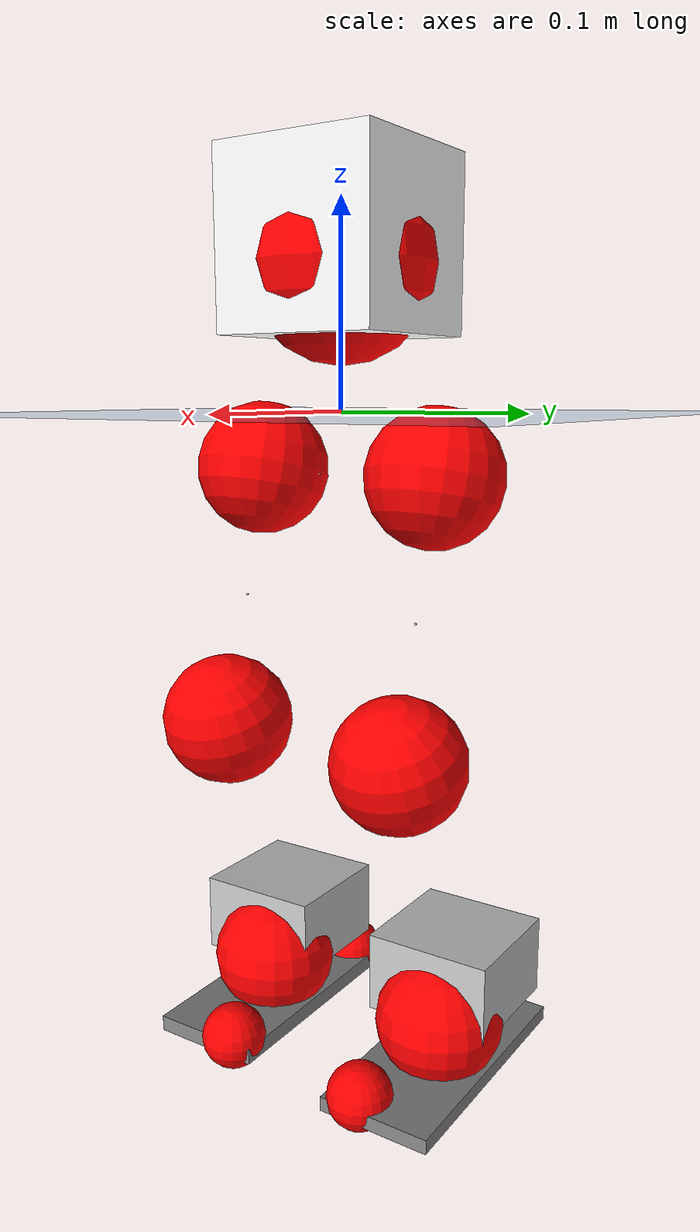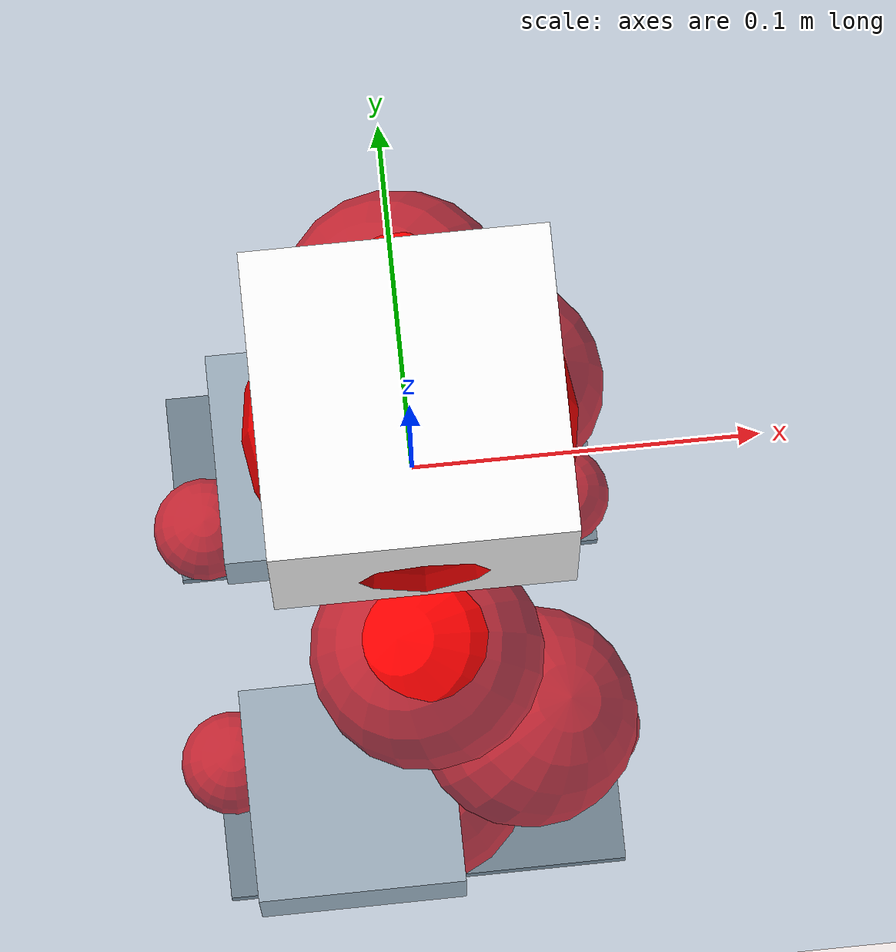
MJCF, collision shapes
<mujoco model="pi_12dof_release_v1">
  <compiler angle="radian" assetdir="assets" balanceinertia="true" inertiafromgeom="false"/>

  <option timestep="0.005" density="1.2" viscosity="2e-05"/>

  <size nkey="1"/>

  <visual>
    <quality shadowsize="8192"/>
    <map shadowclip="0.5"/>
  </visual>

  <default>
    <default class="/">
      <joint armature="0.01" damping="0.01" frictionloss="0.01"/>
      <geom contype="0" conaffinity="0" group="1" solref="-1000 -80"/>
      <site size="0.01 0.005 0.005" group="5"/>
      <general forcelimited="true" biastype="affine" gainprm="20" biasprm="0 -20 -0.5"/>
      <default class="foot">
        <geom size="0.0845 0.036 0.005" type="box" condim="6" group="4" priority="1" friction="0.9 0.2 0.2" solimp="0.015 1 0.005"/>
      </default>
      <default class="reward_collision_sphere">
        <geom group="5" rgba="1 0 0 1"/>
      </default>
    </default>
  </default>

  <asset>
    <texture type="skybox" colorspace="auto" name="//unnamed_texture_0" builtin="gradient" rgb1="0.95 0.95 0.95" rgb2="0.95 0.95 0.95" width="100" height="600"/>
    <texture type="2d" colorspace="auto" name="texplane" builtin="checker" rgb1="0.345 0.575 0.748" rgb2="0.345 0.575 0.748" markrgb="1 1 1" width="512" height="512"/>
    <material name="MatPlane" class="/" texture="texplane" texuniform="true" texrepeat="2 2" specular="0.9"/>
    <mesh name="baselink_1" class="/" file="baselink_1.STL"/>
    <mesh name="r_hip_pitch_link" class="/" file="r_hip_pitch_link.STL"/>
    <mesh name="r_hip_roll_link" class="/" file="r_hip_roll_link.STL"/>
    <mesh name="r_thigh_link" class="/" file="r_thigh_link.STL"/>
    <mesh name="r_calf_link" class="/" file="r_calf_link.STL"/>
    <mesh name="r_ankle_pitch_link" class="/" file="r_ankle_pitch_link.STL"/>
    <mesh name="r_ankle_roll_link" class="/" file="r_ankle_roll_link.STL"/>
    <mesh name="l_hip_pitch_link" class="/" file="l_hip_pitch_link.STL"/>
    <mesh name="l_hip_roll_link" class="/" file="l_hip_roll_link.STL"/>
    <mesh name="l_thigh_link" class="/" file="l_thigh_link.STL"/>
    <mesh name="l_calf_link" class="/" file="l_calf_link.STL"/>
    <mesh name="l_ankle_pitch_link" class="/" file="l_ankle_pitch_link.STL"/>
    <mesh name="l_ankle_roll_link" class="/" file="l_ankle_roll_link.STL"/>
  </asset>

  <worldbody>
    <geom name="floor" class="/" size="100 100 0.125" type="plane" group="0" material="MatPlane"/>
    <light name="toplight_shadow" class="/" pos="0 0 5" dir="0.0990148 0.0990148 -0.990148" type="directional" ambient="0.04 0.04 0.04" diffuse="0.55 0.55 0.55" specular="0.12 0.12 0.12"/>
    <light name="toplight_fill" class="/" pos="0 0 5" dir="0.0990148 0.0990148 -0.990148" type="directional" castshadow="false" ambient="0.04 0.04 0.04" diffuse="0.3 0.3 0.3" specular="0.08 0.08 0.08"/>
    <body name="trunk" pos="-0.000123249 0.0001905 3.90438e-05" quat="1 0.00029038 9.58334e-05 -9.72632e-05">
      <inertial pos="0.00238567 0.00103713 0.0385369" quat="0.695082 0.00784851 0.0134235 0.718762" mass="1.29564" diaginertia="0.00473149 0.00166038 0.00366841"/>
      <joint name="//unnamed_joint_0" type="free"/>
      <geom name="//unnamed_geom_1" class="/" type="mesh" density="0" rgba="1 1 1 1" mesh="baselink_1"/>
      <geom name="//unnamed_geom_2" class="/" size="0.042665 0.042665 0.042665" pos="0 0 0.0783091" type="box" rgba="1 1 1 1"/>
      <geom name="//unnamed_geom_3" class="reward_collision_sphere" size="0.0469314" pos="0 0 0.0685205"/>
      <site name="imu" class="/" pos="0.0042348 0.0137759 -0.00990514" size="0.00853299"/>
      <camera name="track" class="/" pos="0 -1.43142 0" quat="0.707107 0.707107 0 0" mode="trackcom"/>
      <camera name="ego_camera" class="/" pos="0.0648993 0 0.176195" quat="-0.5 -0.5 0.5 0.5"/>
      <body name="r_hip_pitch_link" pos="0.000185619 -0.0131724 -0.0310113" quat="0.992197 8.43155e-06 -0.124683 1.6925e-05">
        <inertial pos="-0.000237634 -0.0389861 -0.000374679" quat="-0.0189419 0.706099 -0.0290025 0.707266" mass="0.221778" diaginertia="5.22581e-05 1.73454e-05 7.21378e-05"/>
        <joint name="r_hip_pitch_joint" class="/" pos="0 0 0" axis="0.00563828 -0.999983 0.00117569" range="-1.72227 1.21333" armature="0.00858304" damping="0.00310841" frictionloss="0.00871753"/>
        <geom name="//unnamed_geom_4" class="/" type="mesh" density="0" rgba="0.75294 0.75294 0.75294 1" mesh="r_hip_pitch_link"/>
        <geom name="//unnamed_geom_5" class="/" size="0.00042665 0.00042665 0.00042665" type="box" rgba="0.75294 0.75294 0.75294 1"/>
        <body name="r_hip_roll_link" pos="-0.000282202 -0.0364533 0.0019511" quat="1 0.000221096 0.000147546 0.000538716">
          <inertial pos="-0.00308135 -0.000240016 -0.0619412" quat="0.702517 -0.0863811 -0.076037 0.702301" mass="0.241463" diaginertia="0.000161542 5.13444e-05 0.000110976"/>
          <joint name="r_hip_roll_joint" class="/" pos="0 0 0" axis="-0.999934 0.00539141 0.0101172" range="-0.108965 0.489119" armature="0.00865973" damping="0.00395657" frictionloss="0.00969008"/>
          <geom name="//unnamed_geom_6" class="/" type="mesh" density="0" rgba="0.75294 0.75294 0.75294 1" mesh="r_hip_roll_link"/>
          <geom name="//unnamed_geom_7" class="/" size="0.00042665 0.00042665 0.00042665" type="box" rgba="0.75294 0.75294 0.75294 1"/>
          <geom name="//unnamed_geom_8" class="reward_collision_sphere" size="0.034132"/>
          <body name="r_thigh_link" pos="-0.00109319 -8.3511e-05 -0.0665306" quat="1 -0.000212143 -0.0006288 -8.6834e-05">
            <inertial pos="0.00120848 0.00042897 -0.0453014" quat="0.737255 0.675595 0.00110814 0.00492151" mass="0.0707724" diaginertia="6.07542e-05 1.78739e-05 5.26163e-05"/>
            <joint name="r_thigh_joint" class="/" pos="0 0 0" axis="-0.00051022 -0.00110301 -0.999999" stiffness="0.00875678" range="-0.35896 0.621997" armature="0.00869179" damping="0.0160381" frictionloss="0.00830648"/>
            <geom name="//unnamed_geom_9" class="/" type="mesh" density="0" rgba="0.75294 0.75294 0.75294 1" mesh="r_thigh_link"/>
            <geom name="//unnamed_geom_10" class="/" size="0.00042665 0.00042665 0.00042665" type="box" rgba="0.75294 0.75294 0.75294 1"/>
            <body name="r_calf_link" pos="-0.00215309 -0.00352986 -0.0662843" quat="0.947662 -0.000158945 0.319274 3.89814e-06">
              <inertial pos="-0.00338638 -0.000664463 -0.0677348" quat="0.999986 -0.00344262 0.00074531 0.00405135" mass="0.490989" diaginertia="0.00167653 0.000645888 0.00015289"/>
              <joint name="r_calf_joint" class="/" pos="0 0 0" axis="-0.00973179 -0.999932 0.00639517" range="-1.65112 0.703793" armature="0.00853158" damping="0.00156765" frictionloss="0.00824607"/>
              <geom name="//unnamed_geom_11" class="/" type="mesh" density="0" rgba="0.75294 0.75294 0.75294 1" mesh="r_calf_link"/>
              <geom name="//unnamed_geom_12" class="/" size="0.00042665 0.00042665 0.00042665" type="box" rgba="0.75294 0.75294 0.75294 1"/>
              <geom name="//unnamed_geom_13" class="reward_collision_sphere" size="0.034132"/>
              <body name="r_ankle_pitch_link" pos="-0.000515745 -0.00169104 -0.141664" quat="0.979938 -0.00010852 -0.199296 0.00127525">
                <inertial pos="0.00127252 0.00274274 -0.00272474" quat="0.00155464 0.711992 -0.00848649 0.702134" mass="0.111891" diaginertia="0.000147114 4.06394e-05 0.000111124"/>
                <joint name="r_ankle_pitch_joint" class="/" pos="0 0 0" axis="0.0104571 -0.999921 -0.00701521" range="-1.35465 0.505153" armature="0.00745191" damping="0.00403364" frictionloss="0.00868882"/>
                <geom name="//unnamed_geom_14" class="/" type="mesh" density="0" rgba="0.75294 0.75294 0.75294 1" mesh="r_ankle_pitch_link"/>
                <geom name="//unnamed_geom_15" class="/" size="0.0332787 0.034132 0.0213325" type="box" rgba="0.75294 0.75294 0.75294 1"/>
                <body name="r_ankle_roll_link" pos="0.0658478 0.00501489 0.0007691" quat="1 4.59225e-05 0.00031197 0.000458675">
                  <inertial pos="-0.0231807 -0.000726064 -0.0125042" quat="0.560718 0.430629 0.431773 0.560113" mass="0.317582" diaginertia="0.000550112 0.000194759 0.000243766"/>
                  <joint name="r_ankle_roll_joint" class="/" pos="0 0 0" axis="-0.999985 0.00419184 -0.0034908" stiffness="0.00865986" range="-0.137231 0.207083" armature="0.00798064" damping="0" frictionloss="0.0082926"/>
                  <geom name="//unnamed_geom_16" class="/" type="mesh" density="0" rgba="0.75294 0.75294 0.75294 1" mesh="r_ankle_roll_link"/>
                  <geom name="//unnamed_geom_17" class="/" type="mesh" rgba="0.75294 0.75294 0.75294 1" mesh="r_ankle_roll_link"/>
                  <geom name="right_foot" class="foot" size="0.0647062 0.0299461 0.00421576" pos="-0.0441315 0 -0.04307"/>
                  <geom name="//unnamed_geom_19" class="reward_collision_sphere" size="0.034132" pos="-0.0432662 0 -0.0195773"/>
                  <geom name="//unnamed_geom_20" class="reward_collision_sphere" size="0.017066" pos="0.0129799 0.0143142 -0.0391546"/>
                  <geom name="//unnamed_geom_21" class="reward_collision_sphere" size="0.017066" pos="-0.103839 0.0143142 -0.0391546"/>
                  <site name="right_foot" class="foot" pos="-0.0441315 0 -0.04307" size="0.00853299"/>
                </body>
              </body>
            </body>
          </body>
        </body>
      </body>
      <body name="l_hip_pitch_link" pos="-0.000956676 0.0142812 -0.0307395" quat="0.992198 0.000860492 -0.124669 -0.000377291">
        <inertial pos="-0.00207525 0.037764 0.000271077" quat="-0.0259139 0.707632 0.0286561 0.705524" mass="0.234886" diaginertia="5.80103e-05 1.96807e-05 8.51524e-05"/>
        <joint name="l_hip_pitch_joint" class="/" pos="0 0 0" axis="-0.00563429 0.999971 0.00514137" range="-1.24812 1.69693" armature="0.00859595" damping="0" frictionloss="0.00973392"/>
        <geom name="//unnamed_geom_22" class="/" type="mesh" density="0" rgba="0.75294 0.75294 0.75294 1" mesh="l_hip_pitch_link"/>
        <geom name="//unnamed_geom_23" class="/" size="0.00042665 0.00042665 0.00042665" type="box" rgba="0.75294 0.75294 0.75294 1"/>
        <body name="l_hip_roll_link" pos="0.00142971 0.0387598 -0.000277105" quat="0.999999 -0.000673186 0.000686798 0.000388819">
          <inertial pos="-0.00201853 -0.00224529 -0.0592307" quat="0.699545 -0.074931 -0.0777193 0.706386" mass="0.241555" diaginertia="0.000161004 5.16174e-05 0.000117636"/>
          <joint name="l_hip_roll_joint" class="/" pos="0 0 0" axis="-0.999993 -0.00181961 -0.00324867" range="-0.499299 0.0580832" armature="0.00766043" damping="0.017024" frictionloss="0.00858737"/>
          <geom name="//unnamed_geom_24" class="/" type="mesh" density="0" rgba="0.75294 0.75294 0.75294 1" mesh="l_hip_roll_link"/>
          <geom name="//unnamed_geom_25" class="/" size="0.00042665 0.00042665 0.00042665" type="box" rgba="0.75294 0.75294 0.75294 1"/>
          <geom name="//unnamed_geom_26" class="reward_collision_sphere" size="0.034132"/>
          <body name="l_thigh_link" pos="-0.00285173 -0.00145227 -0.069044" quat="1 0.000413397 0.000824062 -0.000251053">
            <inertial pos="0.00020987 0.00111064 -0.0464353" quat="0.678398 0.734691 -0.00134257 0.00172579" mass="0.0671177" diaginertia="5.91519e-05 1.66477e-05 5.22295e-05"/>
            <joint name="l_thigh_joint" class="/" pos="0 0 0" axis="-0.00267688 0.000649511 -0.999996" range="-0.578802 0.293633" armature="0.00787826" damping="0" frictionloss="0.00839781"/>
            <geom name="//unnamed_geom_27" class="/" type="mesh" density="0" rgba="0.75294 0.75294 0.75294 1" mesh="l_thigh_link"/>
            <geom name="//unnamed_geom_28" class="/" size="0.00042665 0.00042665 0.00042665" type="box" rgba="0.75294 0.75294 0.75294 1"/>
            <body name="l_calf_link" pos="-0.00196962 0.000264933 -0.0682894" quat="0.947677 -5.44632e-06 0.319232 2.00227e-05">
              <inertial pos="-0.00178932 -0.000765608 -0.0664473" quat="0.99997 0.00647779 -0.00212601 0.00370935" mass="0.511178" diaginertia="0.00171691 0.000650308 0.00016228"/>
              <joint name="l_calf_joint" class="/" pos="0 0 0" axis="-0.0157332 0.999876 -0.000418209" range="-0.676104 1.66719" armature="0.00916034" damping="0" frictionloss="0.00964555"/>
              <geom name="//unnamed_geom_29" class="/" type="mesh" density="0" rgba="0.75294 0.75294 0.75294 1" mesh="l_calf_link"/>
              <geom name="//unnamed_geom_30" class="/" size="0.00042665 0.00042665 0.00042665" type="box" rgba="0.75294 0.75294 0.75294 1"/>
              <geom name="//unnamed_geom_31" class="reward_collision_sphere" size="0.034132"/>
              <body name="l_ankle_pitch_link" pos="-0.00147995 0.00317632 -0.140869" quat="0.980073 -0.000111823 -0.198637 -4.74508e-06">
                <inertial pos="0.00722776 -0.0037467 -0.00100476" quat="-0.00758737 0.707252 -0.00936793 0.706859" mass="0.107012" diaginertia="0.000147837 4.06796e-05 0.000106636"/>
                <joint name="l_ankle_pitch_joint" class="/" pos="0 0 0" axis="-0.00292981 0.999995 0.000848325" stiffness="0.00622749" range="-0.559364 1.28156" armature="0.00724492" damping="0.0123403" frictionloss="0.00771388"/>
                <geom name="//unnamed_geom_32" class="/" type="mesh" density="0" rgba="0.75294 0.75294 0.75294 1" mesh="l_ankle_pitch_link"/>
                <geom name="//unnamed_geom_33" class="/" size="0.0332787 0.034132 0.0213325" type="box" rgba="0.75294 0.75294 0.75294 1"/>
                <body name="l_ankle_roll_link" pos="0.0645919 0.00231409 -0.00158859" quat="1 -4.22058e-05 0.000203663 0.000395488">
                  <inertial pos="-0.0199545 -0.000911711 -0.0130359" quat="0.559872 0.42737 0.436495 0.559794" mass="0.329463" diaginertia="0.000564603 0.000207282 0.000261224"/>
                  <joint name="l_ankle_roll_joint" class="/" pos="0 0 0" axis="-1 -0.000130986 0.000134583" range="-0.147798 0.168083" armature="0.00838204" damping="0" frictionloss="0.00733441"/>
                  <geom name="//unnamed_geom_34" class="/" type="mesh" density="0" rgba="0.75294 0.75294 0.75294 1" mesh="l_ankle_roll_link"/>
                  <geom name="//unnamed_geom_35" class="/" type="mesh" rgba="0.75294 0.75294 0.75294 1" mesh="l_ankle_roll_link"/>
                  <geom name="left_foot" class="foot" size="0.0687804 0.0304175 0.00385897" pos="-0.0441315 0 -0.04307"/>
                  <geom name="//unnamed_geom_37" class="reward_collision_sphere" size="0.034132" pos="-0.0432662 0 -0.0195773"/>
                  <geom name="//unnamed_geom_38" class="reward_collision_sphere" size="0.017066" pos="0.0129799 -0.0143142 -0.0391546"/>
                  <geom name="//unnamed_geom_39" class="reward_collision_sphere" size="0.017066" pos="-0.103839 -0.0143142 -0.0391546"/>
                  <site name="left_foot" class="foot" pos="-0.0441315 0 -0.04307" size="0.00853299"/>
                </body>
              </body>
            </body>
          </body>
        </body>
      </body>
    </body>
  </worldbody>

  <contact>
    <pair class="/" geom1="floor" geom2="right_foot" name="//unnamed_contact_1"/>
    <pair class="/" geom1="floor" geom2="left_foot" name="//unnamed_contact_0"/>
  </contact>

  <actuator>
    <general name="r_hip_pitch_joint" class="/" joint="r_hip_pitch_joint" forcerange="-18.8515 18.8515" gainprm="17.4439" biasprm="0 -17.4439 -0.418589"/>
    <general name="r_hip_roll_joint" class="/" joint="r_hip_roll_joint" forcerange="-18.2565 18.2565" gainprm="17.4439" biasprm="0 -17.4439 -0.418589"/>
    <general name="r_thigh_joint" class="/" joint="r_thigh_joint" forcerange="-17.8128 17.8128" gainprm="17.4439" biasprm="0 -17.4439 -0.418589"/>
    <general name="r_calf_joint" class="/" joint="r_calf_joint" forcerange="-17.3578 17.3578" gainprm="17.4439" biasprm="0 -17.4439 -0.418589"/>
    <general name="r_ankle_pitch_joint" class="/" joint="r_ankle_pitch_joint" forcerange="-16.0381 16.0381" gainprm="17.4439" biasprm="0 -17.4439 -0.418589"/>
    <general name="r_ankle_roll_joint" class="/" joint="r_ankle_roll_joint" forcerange="-18.168 18.168" gainprm="17.4439" biasprm="0 -17.4439 -0.418589"/>
    <general name="l_hip_pitch_joint" class="/" joint="l_hip_pitch_joint" forcerange="-18.0283 18.0283" gainprm="17.4439" biasprm="0 -17.4439 -0.418589"/>
    <general name="l_hip_roll_joint" class="/" joint="l_hip_roll_joint" forcerange="-18.4138 18.4138" gainprm="17.4439" biasprm="0 -17.4439 -0.418589"/>
    <general name="l_thigh_joint" class="/" joint="l_thigh_joint" forcerange="-19.7774 19.7774" gainprm="17.4439" biasprm="0 -17.4439 -0.418589"/>
    <general name="l_calf_joint" class="/" joint="l_calf_joint" forcerange="-17.6351 17.6351" gainprm="17.4439" biasprm="0 -17.4439 -0.418589"/>
    <general name="l_ankle_pitch_joint" class="/" joint="l_ankle_pitch_joint" forcerange="-19.766 19.766" gainprm="17.4439" biasprm="0 -17.4439 -0.418589"/>
    <general name="l_ankle_roll_joint" class="/" joint="l_ankle_roll_joint" forcerange="-18.1111 18.1111" gainprm="17.4439" biasprm="0 -17.4439 -0.418589"/>
  </actuator>

  <sensor>
    <gyro site="imu" name="imu_angular_velocity"/>
    <velocimeter site="imu" name="imu_linear_velocity"/>
    <framelinvel objtype="site" objname="left_foot" name="left_foot_global_linear_velocity"/>
    <framelinvel objtype="site" objname="right_foot" name="right_foot_global_linear_velocity"/>
  </sensor>

  <keyframe>
    <key name="home" qpos="0 0 0.291 1 0 0 0 0.4 0 0 -0.8 0.4 0 -0.4 0 0 0.8 -0.4 0"/>
  </keyframe>
</mujoco>
